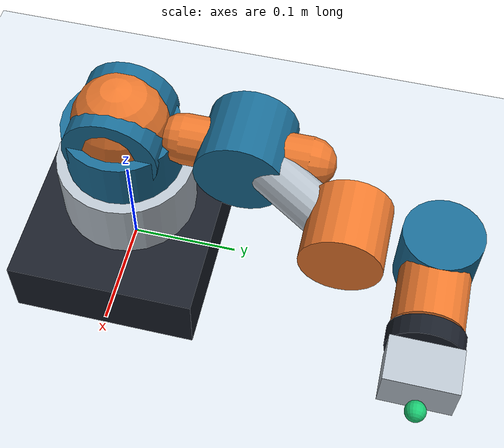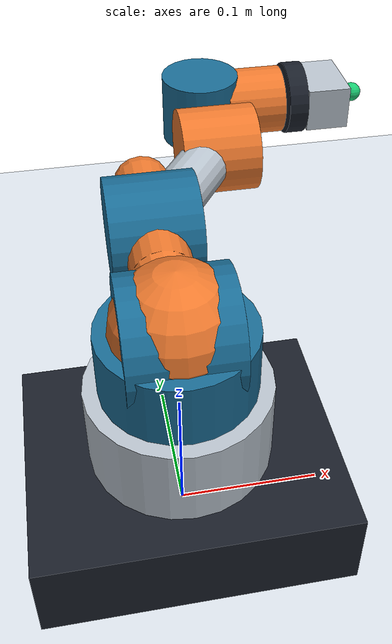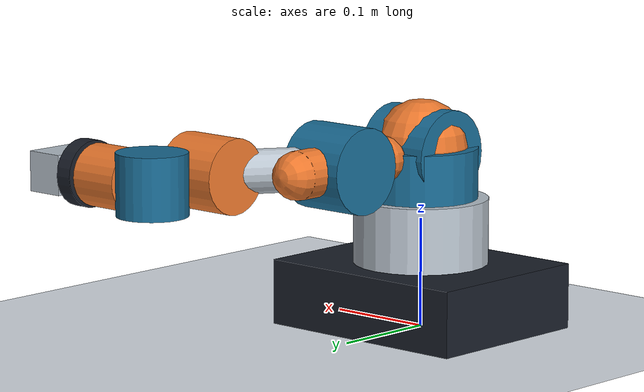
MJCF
<mujoco model="mycobot_280_m5">
  <compiler angle="degree" autolimits="true"/>
  <option timestep="0.01" gravity="0 0 -9.81"/>
  <statistic center="0 0 0.18" extent="0.55"/>

  <visual>
    <global azimuth="135" elevation="-25" offwidth="760" offheight="520"/>
    <quality shadowsize="2048"/>
    <headlight ambient="0.35 0.35 0.35" diffuse="0.7 0.7 0.7" specular="0.2 0.2 0.2"/>
    <rgba haze="0.9 0.93 0.97 1"/>
  </visual>

  <asset>
    <material name="dark" rgba="0.10 0.12 0.16 1"/>
    <material name="blue" rgba="0.10 0.42 0.58 1"/>
    <material name="orange" rgba="0.92 0.47 0.18 1"/>
    <material name="metal" rgba="0.72 0.76 0.80 1"/>
    <material name="floor" rgba="0.86 0.89 0.92 1"/>
  </asset>

  <default>
    <joint damping="1.4" armature="0.03" limited="true"/>
    <geom contype="0" conaffinity="0"/>
    <position kp="120" dampratio="1" forcerange="-25 25"/>
  </default>

  <worldbody>
    <camera name="viewer" pos="0.43 -0.72 0.44" xyaxes="0.86 0.51 0 -0.22 0.37 0.90"/>
    <light name="key" pos="0 -1.4 1.6" dir="0 1 -1"/>
    <light name="fill" pos="-0.6 0.8 1.0" dir="0 -1 -0.5" diffuse="0.35 0.35 0.35"/>
    <geom name="floor" type="plane" size="0.8 0.8 0.02" material="floor"/>

    <body name="g_base" pos="0 0 0.03">
      <geom name="m5_stack_base" type="box" size="0.105 0.085 0.03" material="dark"/>
      <geom name="base_column" type="cylinder" pos="0 0 0.055" size="0.062 0.035" material="metal"/>

      <body name="joint1" pos="0 0 0.10156">
        <joint name="joint1" type="hinge" axis="0 0 1" range="-168 168"/>
        <geom name="joint1_housing" type="cylinder" size="0.052 0.035" material="blue"/>
        <geom name="joint1_cap" type="sphere" pos="0 0 0.036" size="0.043" material="orange"/>

        <body name="joint2" pos="0 0 0.03" euler="0 90 -90">
          <joint name="joint2" type="hinge" axis="0 0 1" range="-140 140"/>
          <geom name="joint2_housing" type="cylinder" size="0.042 0.036" material="blue"/>
          <body name="link2_vis" pos="-0.055 0 0">
            <geom name="link2" type="capsule" fromto="0 0 0 -0.1104 0 0" size="0.022" material="orange"/>
          </body>

          <body name="joint3" pos="-0.1104 0 0">
            <joint name="joint3" type="hinge" axis="0 0 1" range="-150 150"/>
            <geom name="joint3_housing" type="cylinder" size="0.039 0.032" material="blue"/>
            <geom name="link3" type="capsule" fromto="0 0 0 -0.096 0 0.06462" size="0.020" material="metal"/>

            <body name="joint4" pos="-0.096 0 0.06462" euler="0 0 -90">
              <joint name="joint4" type="hinge" axis="0 0 1" range="-150 150"/>
              <geom name="joint4_housing" type="cylinder" size="0.034 0.030" material="orange"/>

              <body name="joint5" pos="0 -0.07318 0" euler="90 -90 0">
                <joint name="joint5" type="hinge" axis="0 0 1" range="-155 160"/>
                <geom name="joint5_housing" type="cylinder" size="0.032 0.028" material="blue"/>
                <geom name="link5" type="capsule" fromto="0 0 0 0 0.0456 0" size="0.017" material="metal"/>

                <body name="joint6" pos="0 0.0456 0" euler="-90 0 0">
                  <joint name="joint6" type="hinge" axis="0 0 1" range="-180 180"/>
                  <geom name="joint6_housing" type="cylinder" size="0.028 0.024" material="orange"/>
                  <body name="flange" pos="0 0 0.035">
                    <geom name="flange_plate" type="cylinder" size="0.030 0.008" material="dark"/>
                    <geom name="tool_stub" type="box" pos="0 0 0.026" size="0.028 0.018 0.018" material="metal"/>
                    <site name="tcp" pos="0 0 0.055" size="0.008" rgba="0.1 0.8 0.45 1"/>
                  </body>
                </body>
              </body>
            </body>
          </body>
        </body>
      </body>
    </body>
  </worldbody>

  <actuator>
    <position name="act1" joint="joint1" ctrlrange="-2.932153 2.932153"/>
    <position name="act2" joint="joint2" ctrlrange="-2.443461 2.443461"/>
    <position name="act3" joint="joint3" ctrlrange="-2.617994 2.617994"/>
    <position name="act4" joint="joint4" ctrlrange="-2.617994 2.617994"/>
    <position name="act5" joint="joint5" ctrlrange="-2.705260 2.792527"/>
    <position name="act6" joint="joint6" ctrlrange="-3.141593 3.141593"/>
  </actuator>
</mujoco>
